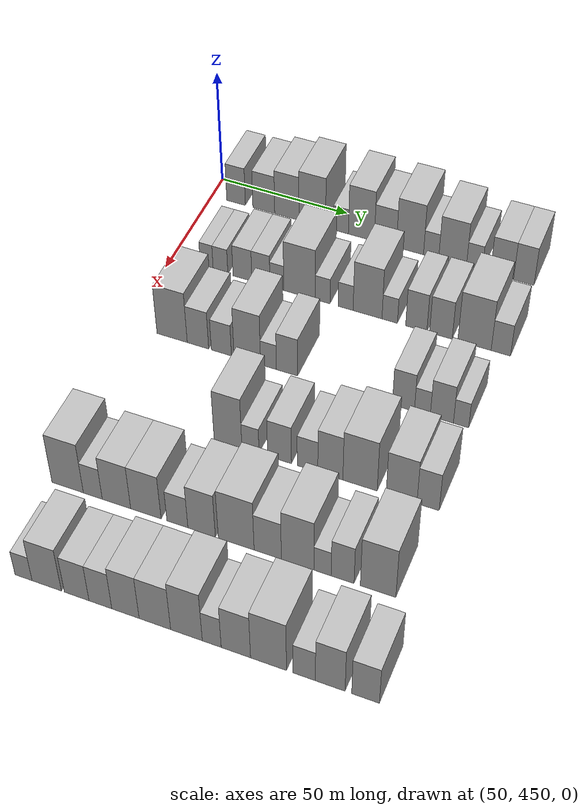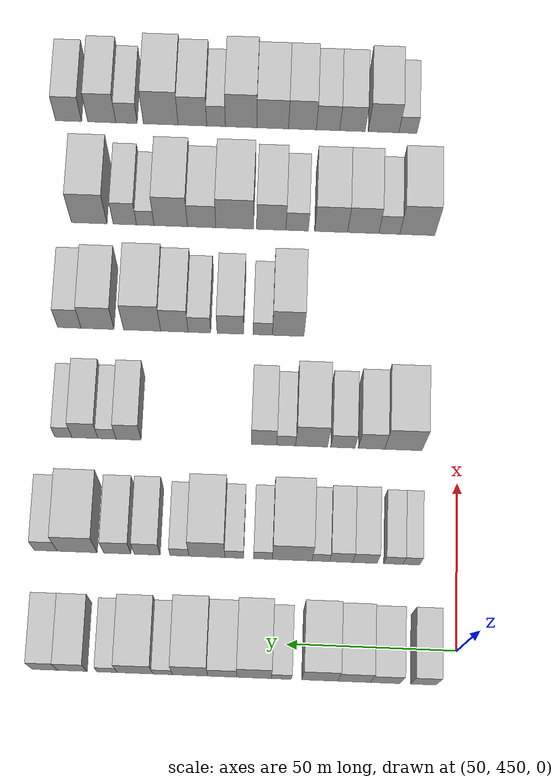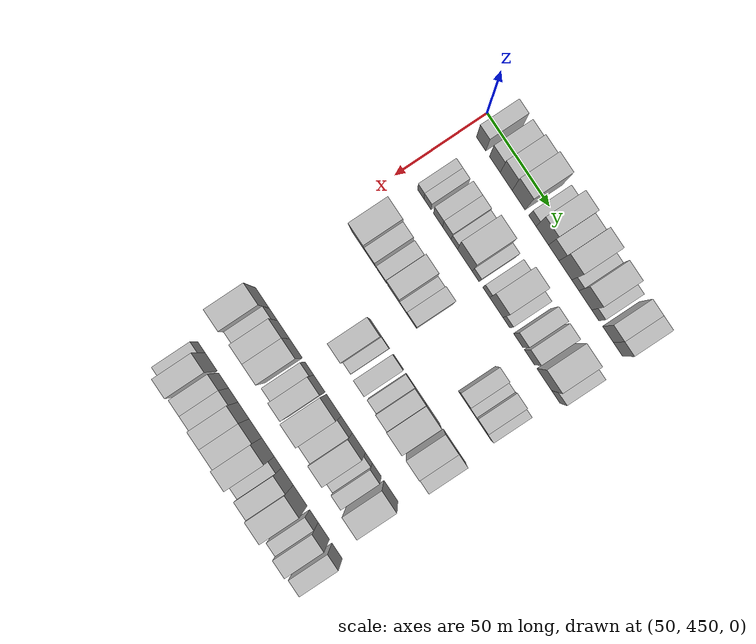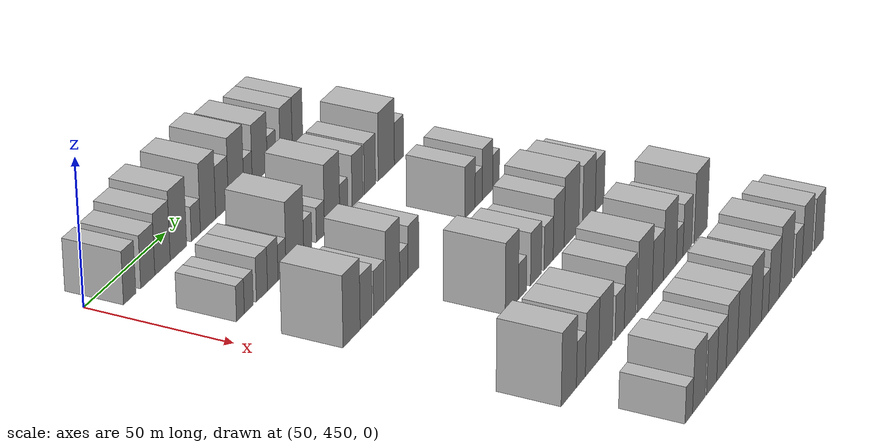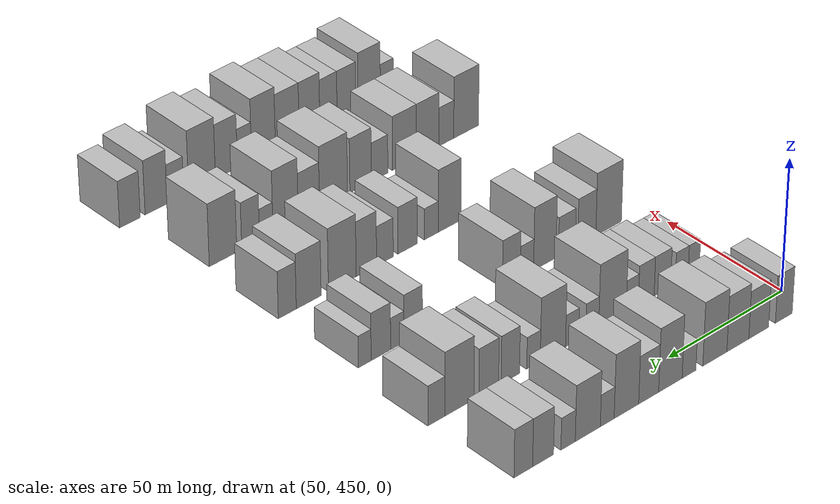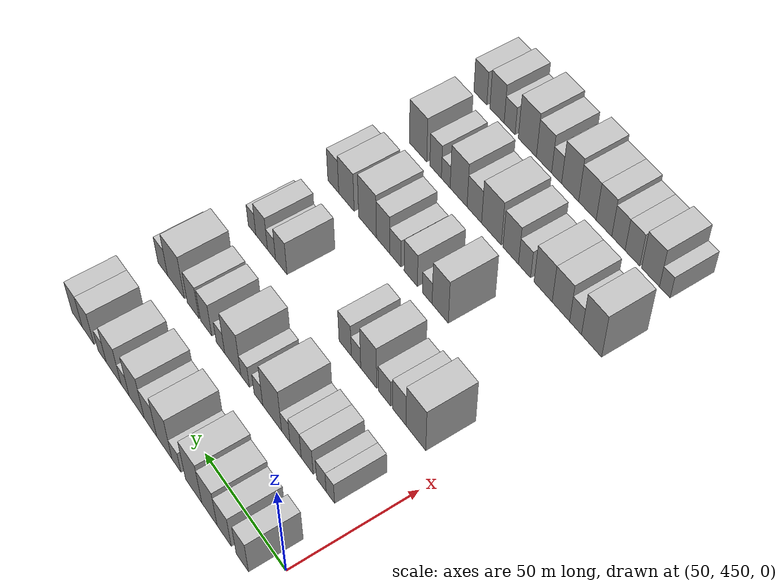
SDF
<sdf version="1.6">
 <world name="default">
  <model name="building_115">
   <static>1</static>
   <pose>50.0000 459.8314 0 0.000000 0.000000 0.000000</pose>
   <link name="link">
    <pose>0 0 9.00 0 0 0</pose>
    <collision name="collision"><geometry><box><size>20.0000 7.4867 18.0000</size></box></geometry></collision>
    <visual name="visual">
     <cast_shadows>0</cast_shadows>
     <geometry><box><size>20.0000 7.4867 18.0000</size></box></geometry>
     <material>
      <script>
       <uri>model://HANNAS_wall/materials/scripts</uri>
       <uri>model://HANNAS_wall/materials/textures</uri>
       <name>vrc/HANNAS_wall</name>
      </script>
     </material>
    </visual>
   </link>
  </model>
  <model name="building_116">
   <static>1</static>
   <pose>50.0000 470.9443 0 0.000000 0.000000 0.000000</pose>
   <link name="link">
    <pose>0 0 9.00 0 0 0</pose>
    <collision name="collision"><geometry><box><size>20.0000 8.7391 18.0000</size></box></geometry></collision>
    <visual name="visual">
     <cast_shadows>0</cast_shadows>
     <geometry><box><size>20.0000 8.7391 18.0000</size></box></geometry>
     <material>
      <script>
       <uri>model://HANNAS_wall/materials/scripts</uri>
       <uri>model://HANNAS_wall/materials/textures</uri>
       <name>vrc/HANNAS_wall</name>
      </script>
     </material>
    </visual>
   </link>
  </model>
  <model name="building_117">
   <static>1</static>
   <pose>50.0000 480.1161 0 0.000000 0.000000 0.000000</pose>
   <link name="link">
    <pose>0 0 10.50 0 0 0</pose>
    <collision name="collision"><geometry><box><size>20.0000 9.6046 21.0000</size></box></geometry></collision>
    <visual name="visual">
     <cast_shadows>0</cast_shadows>
     <geometry><box><size>20.0000 9.6046 21.0000</size></box></geometry>
     <material>
      <script>
       <uri>model://HANNAS_wall/materials/scripts</uri>
       <uri>model://HANNAS_wall/materials/textures</uri>
       <name>vrc/HANNAS_wall</name>
      </script>
     </material>
    </visual>
   </link>
  </model>
  <model name="building_118">
   <static>1</static>
   <pose>50.0000 490.1458 0 0.000000 0.000000 0.000000</pose>
   <link name="link">
    <pose>0 0 12.00 0 0 0</pose>
    <collision name="collision"><geometry><box><size>20.0000 10.4548 24.0000</size></box></geometry></collision>
    <visual name="visual">
     <cast_shadows>0</cast_shadows>
     <geometry><box><size>20.0000 10.4548 24.0000</size></box></geometry>
     <material>
      <script>
       <uri>model://HANNAS_wall/materials/scripts</uri>
       <uri>model://HANNAS_wall/materials/textures</uri>
       <name>vrc/HANNAS_wall</name>
      </script>
     </material>
    </visual>
   </link>
  </model>
  <model name="building_119">
   <static>1</static>
   <pose>50.0000 501.3256 0 0.000000 0.000000 0.000000</pose>
   <link name="link">
    <pose>0 0 6.00 0 0 0</pose>
    <collision name="collision"><geometry><box><size>20.0000 5.9046 12.0000</size></box></geometry></collision>
    <visual name="visual">
     <cast_shadows>0</cast_shadows>
     <geometry><box><size>20.0000 5.9046 12.0000</size></box></geometry>
     <material>
      <script>
       <uri>model://HANNAS_wall/materials/scripts</uri>
       <uri>model://HANNAS_wall/materials/textures</uri>
       <name>vrc/HANNAS_wall</name>
      </script>
     </material>
    </visual>
   </link>
  </model>
  <model name="building_120">
   <static>1</static>
   <pose>50.0000 509.2985 0 0.000000 0.000000 0.000000</pose>
   <link name="link">
    <pose>0 0 12.00 0 0 0</pose>
    <collision name="collision"><geometry><box><size>20.0000 10.0412 24.0000</size></box></geometry></collision>
    <visual name="visual">
     <cast_shadows>0</cast_shadows>
     <geometry><box><size>20.0000 10.0412 24.0000</size></box></geometry>
     <material>
      <script>
       <uri>model://HANNAS_wall/materials/scripts</uri>
       <uri>model://HANNAS_wall/materials/textures</uri>
       <name>vrc/HANNAS_wall</name>
      </script>
     </material>
    </visual>
   </link>
  </model>
  <model name="building_121">
   <static>1</static>
   <pose>50.0000 518.5492 0 0.000000 0.000000 0.000000</pose>
   <link name="link">
    <pose>0 0 9.00 0 0 0</pose>
    <collision name="collision"><geometry><box><size>20.0000 8.4603 18.0000</size></box></geometry></collision>
    <visual name="visual">
     <cast_shadows>0</cast_shadows>
     <geometry><box><size>20.0000 8.4603 18.0000</size></box></geometry>
     <material>
      <script>
       <uri>model://HANNAS_wall/materials/scripts</uri>
       <uri>model://HANNAS_wall/materials/textures</uri>
       <name>vrc/HANNAS_wall</name>
      </script>
     </material>
    </visual>
   </link>
  </model>
  <model name="building_122">
   <static>1</static>
   <pose>50.0000 527.9316 0 0.000000 0.000000 0.000000</pose>
   <link name="link">
    <pose>0 0 12.00 0 0 0</pose>
    <collision name="collision"><geometry><box><size>20.0000 10.3044 24.0000</size></box></geometry></collision>
    <visual name="visual">
     <cast_shadows>0</cast_shadows>
     <geometry><box><size>20.0000 10.3044 24.0000</size></box></geometry>
     <material>
      <script>
       <uri>model://HANNAS_wall/materials/scripts</uri>
       <uri>model://HANNAS_wall/materials/textures</uri>
       <name>vrc/HANNAS_wall</name>
      </script>
     </material>
    </visual>
   </link>
  </model>
  <model name="building_123">
   <static>1</static>
   <pose>50.0000 535.9538 0 0.000000 0.000000 0.000000</pose>
   <link name="link">
    <pose>0 0 6.00 0 0 0</pose>
    <collision name="collision"><geometry><box><size>20.0000 5.7401 12.0000</size></box></geometry></collision>
    <visual name="visual">
     <cast_shadows>0</cast_shadows>
     <geometry><box><size>20.0000 5.7401 12.0000</size></box></geometry>
     <material>
      <script>
       <uri>model://HANNAS_wall/materials/scripts</uri>
       <uri>model://HANNAS_wall/materials/textures</uri>
       <name>vrc/HANNAS_wall</name>
      </script>
     </material>
    </visual>
   </link>
  </model>
  <model name="building_124">
   <static>1</static>
   <pose>50.0000 544.0264 0 0.000000 0.000000 0.000000</pose>
   <link name="link">
    <pose>0 0 10.50 0 0 0</pose>
    <collision name="collision"><geometry><box><size>20.0000 10.4051 21.0000</size></box></geometry></collision>
    <visual name="visual">
     <cast_shadows>0</cast_shadows>
     <geometry><box><size>20.0000 10.4051 21.0000</size></box></geometry>
     <material>
      <script>
       <uri>model://HANNAS_wall/materials/scripts</uri>
       <uri>model://HANNAS_wall/materials/textures</uri>
       <name>vrc/HANNAS_wall</name>
      </script>
     </material>
    </visual>
   </link>
  </model>
  <model name="building_125">
   <static>1</static>
   <pose>50.0000 552.1847 0 0.000000 0.000000 0.000000</pose>
   <link name="link">
    <pose>0 0 6.00 0 0 0</pose>
    <collision name="collision"><geometry><box><size>20.0000 5.9114 12.0000</size></box></geometry></collision>
    <visual name="visual">
     <cast_shadows>0</cast_shadows>
     <geometry><box><size>20.0000 5.9114 12.0000</size></box></geometry>
     <material>
      <script>
       <uri>model://HANNAS_wall/materials/scripts</uri>
       <uri>model://HANNAS_wall/materials/textures</uri>
       <name>vrc/HANNAS_wall</name>
      </script>
     </material>
    </visual>
   </link>
  </model>
  <model name="building_126">
   <static>1</static>
   <pose>50.0000 562.4111 0 0.000000 0.000000 0.000000</pose>
   <link name="link">
    <pose>0 0 9.00 0 0 0</pose>
    <collision name="collision"><geometry><box><size>20.0000 8.5415 18.0000</size></box></geometry></collision>
    <visual name="visual">
     <cast_shadows>0</cast_shadows>
     <geometry><box><size>20.0000 8.5415 18.0000</size></box></geometry>
     <material>
      <script>
       <uri>model://HANNAS_wall/materials/scripts</uri>
       <uri>model://HANNAS_wall/materials/textures</uri>
       <name>vrc/HANNAS_wall</name>
      </script>
     </material>
    </visual>
   </link>
  </model>
  <model name="building_127">
   <static>1</static>
   <pose>50.0000 570.4428 0 0.000000 0.000000 0.000000</pose>
   <link name="link">
    <pose>0 0 9.00 0 0 0</pose>
    <collision name="collision"><geometry><box><size>20.0000 7.5220 18.0000</size></box></geometry></collision>
    <visual name="visual">
     <cast_shadows>0</cast_shadows>
     <geometry><box><size>20.0000 7.5220 18.0000</size></box></geometry>
     <material>
      <script>
       <uri>model://HANNAS_wall/materials/scripts</uri>
       <uri>model://HANNAS_wall/materials/textures</uri>
       <name>vrc/HANNAS_wall</name>
      </script>
     </material>
    </visual>
   </link>
  </model>
  <model name="building_247">
   <static>1</static>
   <pose>85.0000 463.6676 0 0.000000 0.000000 0.000000</pose>
   <link name="link">
    <pose>0 0 6.00 0 0 0</pose>
    <collision name="collision"><geometry><box><size>20.0000 4.9891 12.0000</size></box></geometry></collision>
    <visual name="visual">
     <cast_shadows>0</cast_shadows>
     <geometry><box><size>20.0000 4.9891 12.0000</size></box></geometry>
     <material>
      <script>
       <uri>model://HANNAS_wall/materials/scripts</uri>
       <uri>model://HANNAS_wall/materials/textures</uri>
       <name>vrc/HANNAS_wall</name>
      </script>
     </material>
    </visual>
   </link>
  </model>
  <model name="building_248">
   <static>1</static>
   <pose>85.0000 469.0102 0 0.000000 0.000000 0.000000</pose>
   <link name="link">
    <pose>0 0 6.00 0 0 0</pose>
    <collision name="collision"><geometry><box><size>20.0000 5.6959 12.0000</size></box></geometry></collision>
    <visual name="visual">
     <cast_shadows>0</cast_shadows>
     <geometry><box><size>20.0000 5.6959 12.0000</size></box></geometry>
     <material>
      <script>
       <uri>model://HANNAS_wall/materials/scripts</uri>
       <uri>model://HANNAS_wall/materials/textures</uri>
       <name>vrc/HANNAS_wall</name>
      </script>
     </material>
    </visual>
   </link>
  </model>
  <model name="building_249">
   <static>1</static>
   <pose>85.0000 477.4912 0 0.000000 0.000000 0.000000</pose>
   <link name="link">
    <pose>0 0 7.50 0 0 0</pose>
    <collision name="collision"><geometry><box><size>20.0000 7.2662 15.0000</size></box></geometry></collision>
    <visual name="visual">
     <cast_shadows>0</cast_shadows>
     <geometry><box><size>20.0000 7.2662 15.0000</size></box></geometry>
     <material>
      <script>
       <uri>model://HANNAS_wall/materials/scripts</uri>
       <uri>model://HANNAS_wall/materials/textures</uri>
       <name>vrc/HANNAS_wall</name>
      </script>
     </material>
    </visual>
   </link>
  </model>
  <model name="building_250">
   <static>1</static>
   <pose>85.0000 484.5847 0 0.000000 0.000000 0.000000</pose>
   <link name="link">
    <pose>0 0 7.50 0 0 0</pose>
    <collision name="collision"><geometry><box><size>20.0000 6.9208 15.0000</size></box></geometry></collision>
    <visual name="visual">
     <cast_shadows>0</cast_shadows>
     <geometry><box><size>20.0000 6.9208 15.0000</size></box></geometry>
     <material>
      <script>
       <uri>model://HANNAS_wall/materials/scripts</uri>
       <uri>model://HANNAS_wall/materials/textures</uri>
       <name>vrc/HANNAS_wall</name>
      </script>
     </material>
    </visual>
   </link>
  </model>
  <model name="building_251">
   <static>1</static>
   <pose>85.0000 490.6668 0 0.000000 0.000000 0.000000</pose>
   <link name="link">
    <pose>0 0 6.00 0 0 0</pose>
    <collision name="collision"><geometry><box><size>20.0000 5.2433 12.0000</size></box></geometry></collision>
    <visual name="visual">
     <cast_shadows>0</cast_shadows>
     <geometry><box><size>20.0000 5.2433 12.0000</size></box></geometry>
     <material>
      <script>
       <uri>model://HANNAS_wall/materials/scripts</uri>
       <uri>model://HANNAS_wall/materials/textures</uri>
       <name>vrc/HANNAS_wall</name>
      </script>
     </material>
    </visual>
   </link>
  </model>
  <model name="building_252">
   <static>1</static>
   <pose>85.0000 499.2206 0 0.000000 0.000000 0.000000</pose>
   <link name="link">
    <pose>0 0 12.00 0 0 0</pose>
    <collision name="collision"><geometry><box><size>20.0000 11.8644 24.0000</size></box></geometry></collision>
    <visual name="visual">
     <cast_shadows>0</cast_shadows>
     <geometry><box><size>20.0000 11.8644 24.0000</size></box></geometry>
     <material>
      <script>
       <uri>model://HANNAS_wall/materials/scripts</uri>
       <uri>model://HANNAS_wall/materials/textures</uri>
       <name>vrc/HANNAS_wall</name>
      </script>
     </material>
    </visual>
   </link>
  </model>
  <model name="building_253">
   <static>1</static>
   <pose>85.0000 507.9307 0 0.000000 0.000000 0.000000</pose>
   <link name="link">
    <pose>0 0 6.00 0 0 0</pose>
    <collision name="collision"><geometry><box><size>20.0000 5.5558 12.0000</size></box></geometry></collision>
    <visual name="visual">
     <cast_shadows>0</cast_shadows>
     <geometry><box><size>20.0000 5.5558 12.0000</size></box></geometry>
     <material>
      <script>
       <uri>model://HANNAS_wall/materials/scripts</uri>
       <uri>model://HANNAS_wall/materials/textures</uri>
       <name>vrc/HANNAS_wall</name>
      </script>
     </material>
    </visual>
   </link>
  </model>
  <model name="building_254">
   <static>1</static>
   <pose>85.0000 516.5037 0 0.000000 0.000000 0.000000</pose>
   <link name="link">
    <pose>0 0 6.00 0 0 0</pose>
    <collision name="collision"><geometry><box><size>20.0000 5.5902 12.0000</size></box></geometry></collision>
    <visual name="visual">
     <cast_shadows>0</cast_shadows>
     <geometry><box><size>20.0000 5.5902 12.0000</size></box></geometry>
     <material>
      <script>
       <uri>model://HANNAS_wall/materials/scripts</uri>
       <uri>model://HANNAS_wall/materials/textures</uri>
       <name>vrc/HANNAS_wall</name>
      </script>
     </material>
    </visual>
   </link>
  </model>
  <model name="building_255">
   <static>1</static>
   <pose>85.0000 524.6345 0 0.000000 0.000000 0.000000</pose>
   <link name="link">
    <pose>0 0 12.00 0 0 0</pose>
    <collision name="collision"><geometry><box><size>20.0000 10.6714 24.0000</size></box></geometry></collision>
    <visual name="visual">
     <cast_shadows>0</cast_shadows>
     <geometry><box><size>20.0000 10.6714 24.0000</size></box></geometry>
     <material>
      <script>
       <uri>model://HANNAS_wall/materials/scripts</uri>
       <uri>model://HANNAS_wall/materials/textures</uri>
       <name>vrc/HANNAS_wall</name>
      </script>
     </material>
    </visual>
   </link>
  </model>
  <model name="building_256">
   <static>1</static>
   <pose>85.0000 532.8067 0 0.000000 0.000000 0.000000</pose>
   <link name="link">
    <pose>0 0 6.00 0 0 0</pose>
    <collision name="collision"><geometry><box><size>20.0000 5.6731 12.0000</size></box></geometry></collision>
    <visual name="visual">
     <cast_shadows>0</cast_shadows>
     <geometry><box><size>20.0000 5.6731 12.0000</size></box></geometry>
     <material>
      <script>
       <uri>model://HANNAS_wall/materials/scripts</uri>
       <uri>model://HANNAS_wall/materials/textures</uri>
       <name>vrc/HANNAS_wall</name>
      </script>
     </material>
    </visual>
   </link>
  </model>
  <model name="building_257">
   <static>1</static>
   <pose>85.0000 542.4916 0 0.000000 0.000000 0.000000</pose>
   <link name="link">
    <pose>0 0 9.00 0 0 0</pose>
    <collision name="collision"><geometry><box><size>20.0000 7.6966 18.0000</size></box></geometry></collision>
    <visual name="visual">
     <cast_shadows>0</cast_shadows>
     <geometry><box><size>20.0000 7.6966 18.0000</size></box></geometry>
     <material>
      <script>
       <uri>model://HANNAS_wall/materials/scripts</uri>
       <uri>model://HANNAS_wall/materials/textures</uri>
       <name>vrc/HANNAS_wall</name>
      </script>
     </material>
    </visual>
   </link>
  </model>
  <model name="building_258">
   <static>1</static>
   <pose>85.0000 551.4148 0 0.000000 0.000000 0.000000</pose>
   <link name="link">
    <pose>0 0 9.00 0 0 0</pose>
    <collision name="collision"><geometry><box><size>20.0000 8.1497 18.0000</size></box></geometry></collision>
    <visual name="visual">
     <cast_shadows>0</cast_shadows>
     <geometry><box><size>20.0000 8.1497 18.0000</size></box></geometry>
     <material>
      <script>
       <uri>model://HANNAS_wall/materials/scripts</uri>
       <uri>model://HANNAS_wall/materials/textures</uri>
       <name>vrc/HANNAS_wall</name>
      </script>
     </material>
    </visual>
   </link>
  </model>
  <model name="building_259">
   <static>1</static>
   <pose>85.0000 563.4375 0 0.000000 0.000000 0.000000</pose>
   <link name="link">
    <pose>0 0 12.00 0 0 0</pose>
    <collision name="collision"><geometry><box><size>20.0000 11.8957 24.0000</size></box></geometry></collision>
    <visual name="visual">
     <cast_shadows>0</cast_shadows>
     <geometry><box><size>20.0000 11.8957 24.0000</size></box></geometry>
     <material>
      <script>
       <uri>model://HANNAS_wall/materials/scripts</uri>
       <uri>model://HANNAS_wall/materials/textures</uri>
       <name>vrc/HANNAS_wall</name>
      </script>
     </material>
    </visual>
   </link>
  </model>
  <model name="building_260">
   <static>1</static>
   <pose>85.0000 572.8201 0 0.000000 0.000000 0.000000</pose>
   <link name="link">
    <pose>0 0 7.50 0 0 0</pose>
    <collision name="collision"><geometry><box><size>20.0000 6.8696 15.0000</size></box></geometry></collision>
    <visual name="visual">
     <cast_shadows>0</cast_shadows>
     <geometry><box><size>20.0000 6.8696 15.0000</size></box></geometry>
     <material>
      <script>
       <uri>model://HANNAS_wall/materials/scripts</uri>
       <uri>model://HANNAS_wall/materials/textures</uri>
       <name>vrc/HANNAS_wall</name>
      </script>
     </material>
    </visual>
   </link>
  </model>
  <model name="building_377">
   <static>1</static>
   <pose>120.0000 466.3918 0 0.000000 0.000000 0.000000</pose>
   <link name="link">
    <pose>0 0 12.00 0 0 0</pose>
    <collision name="collision"><geometry><box><size>20.0000 11.3774 24.0000</size></box></geometry></collision>
    <visual name="visual">
     <cast_shadows>0</cast_shadows>
     <geometry><box><size>20.0000 11.3774 24.0000</size></box></geometry>
     <material>
      <script>
       <uri>model://HANNAS_wall/materials/scripts</uri>
       <uri>model://HANNAS_wall/materials/textures</uri>
       <name>vrc/HANNAS_wall</name>
      </script>
     </material>
    </visual>
   </link>
  </model>
  <model name="building_378">
   <static>1</static>
   <pose>120.0000 476.0797 0 0.000000 0.000000 0.000000</pose>
   <link name="link">
    <pose>0 0 9.00 0 0 0</pose>
    <collision name="collision"><geometry><box><size>20.0000 7.9983 18.0000</size></box></geometry></collision>
    <visual name="visual">
     <cast_shadows>0</cast_shadows>
     <geometry><box><size>20.0000 7.9983 18.0000</size></box></geometry>
     <material>
      <script>
       <uri>model://HANNAS_wall/materials/scripts</uri>
       <uri>model://HANNAS_wall/materials/textures</uri>
       <name>vrc/HANNAS_wall</name>
      </script>
     </material>
    </visual>
   </link>
  </model>
  <model name="building_379">
   <static>1</static>
   <pose>120.0000 484.7877 0 0.000000 0.000000 0.000000</pose>
   <link name="link">
    <pose>0 0 7.50 0 0 0</pose>
    <collision name="collision"><geometry><box><size>20.0000 7.4178 15.0000</size></box></geometry></collision>
    <visual name="visual">
     <cast_shadows>0</cast_shadows>
     <geometry><box><size>20.0000 7.4178 15.0000</size></box></geometry>
     <material>
      <script>
       <uri>model://HANNAS_wall/materials/scripts</uri>
       <uri>model://HANNAS_wall/materials/textures</uri>
       <name>vrc/HANNAS_wall</name>
      </script>
     </material>
    </visual>
   </link>
  </model>
  <model name="building_380">
   <static>1</static>
   <pose>120.0000 494.3664 0 0.000000 0.000000 0.000000</pose>
   <link name="link">
    <pose>0 0 12.00 0 0 0</pose>
    <collision name="collision"><geometry><box><size>20.0000 9.7394 24.0000</size></box></geometry></collision>
    <visual name="visual">
     <cast_shadows>0</cast_shadows>
     <geometry><box><size>20.0000 9.7394 24.0000</size></box></geometry>
     <material>
      <script>
       <uri>model://HANNAS_wall/materials/scripts</uri>
       <uri>model://HANNAS_wall/materials/textures</uri>
       <name>vrc/HANNAS_wall</name>
      </script>
     </material>
    </visual>
   </link>
  </model>
  <model name="building_381">
   <static>1</static>
   <pose>120.0000 502.1116 0 0.000000 0.000000 0.000000</pose>
   <link name="link">
    <pose>0 0 6.00 0 0 0</pose>
    <collision name="collision"><geometry><box><size>20.0000 5.7511 12.0000</size></box></geometry></collision>
    <visual name="visual">
     <cast_shadows>0</cast_shadows>
     <geometry><box><size>20.0000 5.7511 12.0000</size></box></geometry>
     <material>
      <script>
       <uri>model://HANNAS_wall/materials/scripts</uri>
       <uri>model://HANNAS_wall/materials/textures</uri>
       <name>vrc/HANNAS_wall</name>
      </script>
     </material>
    </visual>
   </link>
  </model>
  <model name="building_382">
   <static>1</static>
   <pose>120.0000 508.8308 0 0.000000 0.000000 0.000000</pose>
   <link name="link">
    <pose>0 0 9.00 0 0 0</pose>
    <collision name="collision"><geometry><box><size>20.0000 7.6872 18.0000</size></box></geometry></collision>
    <visual name="visual">
     <cast_shadows>0</cast_shadows>
     <geometry><box><size>20.0000 7.6872 18.0000</size></box></geometry>
     <material>
      <script>
       <uri>model://HANNAS_wall/materials/scripts</uri>
       <uri>model://HANNAS_wall/materials/textures</uri>
       <name>vrc/HANNAS_wall</name>
      </script>
     </material>
    </visual>
   </link>
  </model>
  <model name="building_383">
   <static>1</static>
   <pose>120.0000 550.1734 0 0.000000 0.000000 0.000000</pose>
   <link name="link">
    <pose>0 0 9.00 0 0 0</pose>
    <collision name="collision"><geometry><box><size>20.0000 7.6660 18.0000</size></box></geometry></collision>
    <visual name="visual">
     <cast_shadows>0</cast_shadows>
     <geometry><box><size>20.0000 7.6660 18.0000</size></box></geometry>
     <material>
      <script>
       <uri>model://HANNAS_wall/materials/scripts</uri>
       <uri>model://HANNAS_wall/materials/textures</uri>
       <name>vrc/HANNAS_wall</name>
      </script>
     </material>
    </visual>
   </link>
  </model>
  <model name="building_384">
   <static>1</static>
   <pose>120.0000 556.7506 0 0.000000 0.000000 0.000000</pose>
   <link name="link">
    <pose>0 0 6.00 0 0 0</pose>
    <collision name="collision"><geometry><box><size>20.0000 5.4882 12.0000</size></box></geometry></collision>
    <visual name="visual">
     <cast_shadows>0</cast_shadows>
     <geometry><box><size>20.0000 5.4882 12.0000</size></box></geometry>
     <material>
      <script>
       <uri>model://HANNAS_wall/materials/scripts</uri>
       <uri>model://HANNAS_wall/materials/textures</uri>
       <name>vrc/HANNAS_wall</name>
      </script>
     </material>
    </visual>
   </link>
  </model>
  <model name="building_385">
   <static>1</static>
   <pose>120.0000 563.4795 0 0.000000 0.000000 0.000000</pose>
   <link name="link">
    <pose>0 0 9.00 0 0 0</pose>
    <collision name="collision"><geometry><box><size>20.0000 7.9696 18.0000</size></box></geometry></collision>
    <visual name="visual">
     <cast_shadows>0</cast_shadows>
     <geometry><box><size>20.0000 7.9696 18.0000</size></box></geometry>
     <material>
      <script>
       <uri>model://HANNAS_wall/materials/scripts</uri>
       <uri>model://HANNAS_wall/materials/textures</uri>
       <name>vrc/HANNAS_wall</name>
      </script>
     </material>
    </visual>
   </link>
  </model>
  <model name="building_386">
   <static>1</static>
   <pose>120.0000 570.0790 0 0.000000 0.000000 0.000000</pose>
   <link name="link">
    <pose>0 0 6.00 0 0 0</pose>
    <collision name="collision"><geometry><box><size>20.0000 5.2295 12.0000</size></box></geometry></collision>
    <visual name="visual">
     <cast_shadows>0</cast_shadows>
     <geometry><box><size>20.0000 5.2295 12.0000</size></box></geometry>
     <material>
      <script>
       <uri>model://HANNAS_wall/materials/scripts</uri>
       <uri>model://HANNAS_wall/materials/textures</uri>
       <name>vrc/HANNAS_wall</name>
      </script>
     </material>
    </visual>
   </link>
  </model>
  <model name="building_507">
   <static>1</static>
   <pose>155.0000 502.5700 0 0.000000 0.000000 0.000000</pose>
   <link name="link">
    <pose>0 0 12.00 0 0 0</pose>
    <collision name="collision"><geometry><box><size>20.0000 9.7744 24.0000</size></box></geometry></collision>
    <visual name="visual">
     <cast_shadows>0</cast_shadows>
     <geometry><box><size>20.0000 9.7744 24.0000</size></box></geometry>
     <material>
      <script>
       <uri>model://HANNAS_wall/materials/scripts</uri>
       <uri>model://HANNAS_wall/materials/textures</uri>
       <name>vrc/HANNAS_wall</name>
      </script>
     </material>
    </visual>
   </link>
  </model>
  <model name="building_508">
   <static>1</static>
   <pose>155.0000 510.4482 0 0.000000 0.000000 0.000000</pose>
   <link name="link">
    <pose>0 0 6.00 0 0 0</pose>
    <collision name="collision"><geometry><box><size>20.0000 5.9819 12.0000</size></box></geometry></collision>
    <visual name="visual">
     <cast_shadows>0</cast_shadows>
     <geometry><box><size>20.0000 5.9819 12.0000</size></box></geometry>
     <material>
      <script>
       <uri>model://HANNAS_wall/materials/scripts</uri>
       <uri>model://HANNAS_wall/materials/textures</uri>
       <name>vrc/HANNAS_wall</name>
      </script>
     </material>
    </visual>
   </link>
  </model>
  <model name="building_509">
   <static>1</static>
   <pose>155.0000 520.5545 0 0.000000 0.000000 0.000000</pose>
   <link name="link">
    <pose>0 0 9.00 0 0 0</pose>
    <collision name="collision"><geometry><box><size>20.0000 8.2308 18.0000</size></box></geometry></collision>
    <visual name="visual">
     <cast_shadows>0</cast_shadows>
     <geometry><box><size>20.0000 8.2308 18.0000</size></box></geometry>
     <material>
      <script>
       <uri>model://HANNAS_wall/materials/scripts</uri>
       <uri>model://HANNAS_wall/materials/textures</uri>
       <name>vrc/HANNAS_wall</name>
      </script>
     </material>
    </visual>
   </link>
  </model>
  <model name="building_510">
   <static>1</static>
   <pose>155.0000 530.1894 0 0.000000 0.000000 0.000000</pose>
   <link name="link">
    <pose>0 0 7.50 0 0 0</pose>
    <collision name="collision"><geometry><box><size>20.0000 7.0390 15.0000</size></box></geometry></collision>
    <visual name="visual">
     <cast_shadows>0</cast_shadows>
     <geometry><box><size>20.0000 7.0390 15.0000</size></box></geometry>
     <material>
      <script>
       <uri>model://HANNAS_wall/materials/scripts</uri>
       <uri>model://HANNAS_wall/materials/textures</uri>
       <name>vrc/HANNAS_wall</name>
      </script>
     </material>
    </visual>
   </link>
  </model>
  <model name="building_511">
   <static>1</static>
   <pose>155.0000 537.9779 0 0.000000 0.000000 0.000000</pose>
   <link name="link">
    <pose>0 0 10.50 0 0 0</pose>
    <collision name="collision"><geometry><box><size>20.0000 8.5381 21.0000</size></box></geometry></collision>
    <visual name="visual">
     <cast_shadows>0</cast_shadows>
     <geometry><box><size>20.0000 8.5381 21.0000</size></box></geometry>
     <material>
      <script>
       <uri>model://HANNAS_wall/materials/scripts</uri>
       <uri>model://HANNAS_wall/materials/textures</uri>
       <name>vrc/HANNAS_wall</name>
      </script>
     </material>
    </visual>
   </link>
  </model>
  <model name="building_512">
   <static>1</static>
   <pose>155.0000 548.0271 0 0.000000 0.000000 0.000000</pose>
   <link name="link">
    <pose>0 0 12.00 0 0 0</pose>
    <collision name="collision"><geometry><box><size>20.0000 11.5603 24.0000</size></box></geometry></collision>
    <visual name="visual">
     <cast_shadows>0</cast_shadows>
     <geometry><box><size>20.0000 11.5603 24.0000</size></box></geometry>
     <material>
      <script>
       <uri>model://HANNAS_wall/materials/scripts</uri>
       <uri>model://HANNAS_wall/materials/textures</uri>
       <name>vrc/HANNAS_wall</name>
      </script>
     </material>
    </visual>
   </link>
  </model>
  <model name="building_513">
   <static>1</static>
   <pose>155.0000 561.9176 0 0.000000 0.000000 0.000000</pose>
   <link name="link">
    <pose>0 0 10.50 0 0 0</pose>
    <collision name="collision"><geometry><box><size>20.0000 10.2207 21.0000</size></box></geometry></collision>
    <visual name="visual">
     <cast_shadows>0</cast_shadows>
     <geometry><box><size>20.0000 10.2207 21.0000</size></box></geometry>
     <material>
      <script>
       <uri>model://HANNAS_wall/materials/scripts</uri>
       <uri>model://HANNAS_wall/materials/textures</uri>
       <name>vrc/HANNAS_wall</name>
      </script>
     </material>
    </visual>
   </link>
  </model>
  <model name="building_514">
   <static>1</static>
   <pose>155.0000 570.6962 0 0.000000 0.000000 0.000000</pose>
   <link name="link">
    <pose>0 0 9.00 0 0 0</pose>
    <collision name="collision"><geometry><box><size>20.0000 7.3364 18.0000</size></box></geometry></collision>
    <visual name="visual">
     <cast_shadows>0</cast_shadows>
     <geometry><box><size>20.0000 7.3364 18.0000</size></box></geometry>
     <material>
      <script>
       <uri>model://HANNAS_wall/materials/scripts</uri>
       <uri>model://HANNAS_wall/materials/textures</uri>
       <name>vrc/HANNAS_wall</name>
      </script>
     </material>
    </visual>
   </link>
  </model>
  <model name="building_631">
   <static>1</static>
   <pose>190.0000 462.7399 0 0.000000 0.000000 0.000000</pose>
   <link name="link">
    <pose>0 0 12.00 0 0 0</pose>
    <collision name="collision"><geometry><box><size>20.0000 11.0902 24.0000</size></box></geometry></collision>
    <visual name="visual">
     <cast_shadows>0</cast_shadows>
     <geometry><box><size>20.0000 11.0902 24.0000</size></box></geometry>
     <material>
      <script>
       <uri>model://HANNAS_wall/materials/scripts</uri>
       <uri>model://HANNAS_wall/materials/textures</uri>
       <name>vrc/HANNAS_wall</name>
      </script>
     </material>
    </visual>
   </link>
  </model>
  <model name="building_632">
   <static>1</static>
   <pose>190.0000 471.5985 0 0.000000 0.000000 0.000000</pose>
   <link name="link">
    <pose>0 0 7.50 0 0 0</pose>
    <collision name="collision"><geometry><box><size>20.0000 6.6270 15.0000</size></box></geometry></collision>
    <visual name="visual">
     <cast_shadows>0</cast_shadows>
     <geometry><box><size>20.0000 6.6270 15.0000</size></box></geometry>
     <material>
      <script>
       <uri>model://HANNAS_wall/materials/scripts</uri>
       <uri>model://HANNAS_wall/materials/textures</uri>
       <name>vrc/HANNAS_wall</name>
      </script>
     </material>
    </visual>
   </link>
  </model>
  <model name="building_633">
   <static>1</static>
   <pose>190.0000 479.8551 0 0.000000 0.000000 0.000000</pose>
   <link name="link">
    <pose>0 0 10.50 0 0 0</pose>
    <collision name="collision"><geometry><box><size>20.0000 9.8862 21.0000</size></box></geometry></collision>
    <visual name="visual">
     <cast_shadows>0</cast_shadows>
     <geometry><box><size>20.0000 9.8862 21.0000</size></box></geometry>
     <material>
      <script>
       <uri>model://HANNAS_wall/materials/scripts</uri>
       <uri>model://HANNAS_wall/materials/textures</uri>
       <name>vrc/HANNAS_wall</name>
      </script>
     </material>
    </visual>
   </link>
  </model>
  <model name="building_634">
   <static>1</static>
   <pose>190.0000 490.0333 0 0.000000 0.000000 0.000000</pose>
   <link name="link">
    <pose>0 0 10.50 0 0 0</pose>
    <collision name="collision"><geometry><box><size>20.0000 10.4704 21.0000</size></box></geometry></collision>
    <visual name="visual">
     <cast_shadows>0</cast_shadows>
     <geometry><box><size>20.0000 10.4704 21.0000</size></box></geometry>
     <material>
      <script>
       <uri>model://HANNAS_wall/materials/scripts</uri>
       <uri>model://HANNAS_wall/materials/textures</uri>
       <name>vrc/HANNAS_wall</name>
      </script>
     </material>
    </visual>
   </link>
  </model>
  <model name="building_635">
   <static>1</static>
   <pose>190.0000 500.8376 0 0.000000 0.000000 0.000000</pose>
   <link name="link">
    <pose>0 0 7.50 0 0 0</pose>
    <collision name="collision"><geometry><box><size>20.0000 7.1381 15.0000</size></box></geometry></collision>
    <visual name="visual">
     <cast_shadows>0</cast_shadows>
     <geometry><box><size>20.0000 7.1381 15.0000</size></box></geometry>
     <material>
      <script>
       <uri>model://HANNAS_wall/materials/scripts</uri>
       <uri>model://HANNAS_wall/materials/textures</uri>
       <name>vrc/HANNAS_wall</name>
      </script>
     </material>
    </visual>
   </link>
  </model>
  <model name="building_636">
   <static>1</static>
   <pose>190.0000 509.0409 0 0.000000 0.000000 0.000000</pose>
   <link name="link">
    <pose>0 0 10.50 0 0 0</pose>
    <collision name="collision"><geometry><box><size>20.0000 9.2686 21.0000</size></box></geometry></collision>
    <visual name="visual">
     <cast_shadows>0</cast_shadows>
     <geometry><box><size>20.0000 9.2686 21.0000</size></box></geometry>
     <material>
      <script>
       <uri>model://HANNAS_wall/materials/scripts</uri>
       <uri>model://HANNAS_wall/materials/textures</uri>
       <name>vrc/HANNAS_wall</name>
      </script>
     </material>
    </visual>
   </link>
  </model>
  <model name="building_637">
   <static>1</static>
   <pose>190.0000 520.6463 0 0.000000 0.000000 0.000000</pose>
   <link name="link">
    <pose>0 0 12.00 0 0 0</pose>
    <collision name="collision"><geometry><box><size>20.0000 11.9422 24.0000</size></box></geometry></collision>
    <visual name="visual">
     <cast_shadows>0</cast_shadows>
     <geometry><box><size>20.0000 11.9422 24.0000</size></box></geometry>
     <material>
      <script>
       <uri>model://HANNAS_wall/materials/scripts</uri>
       <uri>model://HANNAS_wall/materials/textures</uri>
       <name>vrc/HANNAS_wall</name>
      </script>
     </material>
    </visual>
   </link>
  </model>
  <model name="building_638">
   <static>1</static>
   <pose>190.0000 531.1165 0 0.000000 0.000000 0.000000</pose>
   <link name="link">
    <pose>0 0 9.00 0 0 0</pose>
    <collision name="collision"><geometry><box><size>20.0000 8.9983 18.0000</size></box></geometry></collision>
    <visual name="visual">
     <cast_shadows>0</cast_shadows>
     <geometry><box><size>20.0000 8.9983 18.0000</size></box></geometry>
     <material>
      <script>
       <uri>model://HANNAS_wall/materials/scripts</uri>
       <uri>model://HANNAS_wall/materials/textures</uri>
       <name>vrc/HANNAS_wall</name>
      </script>
     </material>
    </visual>
   </link>
  </model>
  <model name="building_639">
   <static>1</static>
   <pose>190.0000 540.9226 0 0.000000 0.000000 0.000000</pose>
   <link name="link">
    <pose>0 0 12.00 0 0 0</pose>
    <collision name="collision"><geometry><box><size>20.0000 10.6139 24.0000</size></box></geometry></collision>
    <visual name="visual">
     <cast_shadows>0</cast_shadows>
     <geometry><box><size>20.0000 10.6139 24.0000</size></box></geometry>
     <material>
      <script>
       <uri>model://HANNAS_wall/materials/scripts</uri>
       <uri>model://HANNAS_wall/materials/textures</uri>
       <name>vrc/HANNAS_wall</name>
      </script>
     </material>
    </visual>
   </link>
  </model>
  <model name="building_640">
   <static>1</static>
   <pose>190.0000 549.0304 0 0.000000 0.000000 0.000000</pose>
   <link name="link">
    <pose>0 0 6.00 0 0 0</pose>
    <collision name="collision"><geometry><box><size>20.0000 5.6017 12.0000</size></box></geometry></collision>
    <visual name="visual">
     <cast_shadows>0</cast_shadows>
     <geometry><box><size>20.0000 5.6017 12.0000</size></box></geometry>
     <material>
      <script>
       <uri>model://HANNAS_wall/materials/scripts</uri>
       <uri>model://HANNAS_wall/materials/textures</uri>
       <name>vrc/HANNAS_wall</name>
      </script>
     </material>
    </visual>
   </link>
  </model>
  <model name="building_641">
   <static>1</static>
   <pose>190.0000 555.5238 0 0.000000 0.000000 0.000000</pose>
   <link name="link">
    <pose>0 0 9.00 0 0 0</pose>
    <collision name="collision"><geometry><box><size>20.0000 7.3851 18.0000</size></box></geometry></collision>
    <visual name="visual">
     <cast_shadows>0</cast_shadows>
     <geometry><box><size>20.0000 7.3851 18.0000</size></box></geometry>
     <material>
      <script>
       <uri>model://HANNAS_wall/materials/scripts</uri>
       <uri>model://HANNAS_wall/materials/textures</uri>
       <name>vrc/HANNAS_wall</name>
      </script>
     </material>
    </visual>
   </link>
  </model>
  <model name="building_642">
   <static>1</static>
   <pose>190.0000 566.8747 0 0.000000 0.000000 0.000000</pose>
   <link name="link">
    <pose>0 0 12.00 0 0 0</pose>
    <collision name="collision"><geometry><box><size>20.0000 11.3168 24.0000</size></box></geometry></collision>
    <visual name="visual">
     <cast_shadows>0</cast_shadows>
     <geometry><box><size>20.0000 11.3168 24.0000</size></box></geometry>
     <material>
      <script>
       <uri>model://HANNAS_wall/materials/scripts</uri>
       <uri>model://HANNAS_wall/materials/textures</uri>
       <name>vrc/HANNAS_wall</name>
      </script>
     </material>
    </visual>
   </link>
  </model>
  <model name="building_757">
   <static>1</static>
   <pose>225.0000 466.0577 0 0.000000 0.000000 0.000000</pose>
   <link name="link">
    <pose>0 0 6.00 0 0 0</pose>
    <collision name="collision"><geometry><box><size>20.0000 5.7985 12.0000</size></box></geometry></collision>
    <visual name="visual">
     <cast_shadows>0</cast_shadows>
     <geometry><box><size>20.0000 5.7985 12.0000</size></box></geometry>
     <material>
      <script>
       <uri>model://HANNAS_wall/materials/scripts</uri>
       <uri>model://HANNAS_wall/materials/textures</uri>
       <name>vrc/HANNAS_wall</name>
      </script>
     </material>
    </visual>
   </link>
  </model>
  <model name="building_758">
   <static>1</static>
   <pose>225.0000 473.9018 0 0.000000 0.000000 0.000000</pose>
   <link name="link">
    <pose>0 0 10.50 0 0 0</pose>
    <collision name="collision"><geometry><box><size>20.0000 9.8897 21.0000</size></box></geometry></collision>
    <visual name="visual">
     <cast_shadows>0</cast_shadows>
     <geometry><box><size>20.0000 9.8897 21.0000</size></box></geometry>
     <material>
      <script>
       <uri>model://HANNAS_wall/materials/scripts</uri>
       <uri>model://HANNAS_wall/materials/textures</uri>
       <name>vrc/HANNAS_wall</name>
      </script>
     </material>
    </visual>
   </link>
  </model>
  <model name="building_759">
   <static>1</static>
   <pose>225.0000 483.9639 0 0.000000 0.000000 0.000000</pose>
   <link name="link">
    <pose>0 0 9.00 0 0 0</pose>
    <collision name="collision"><geometry><box><size>20.0000 8.2343 18.0000</size></box></geometry></collision>
    <visual name="visual">
     <cast_shadows>0</cast_shadows>
     <geometry><box><size>20.0000 8.2343 18.0000</size></box></geometry>
     <material>
      <script>
       <uri>model://HANNAS_wall/materials/scripts</uri>
       <uri>model://HANNAS_wall/materials/textures</uri>
       <name>vrc/HANNAS_wall</name>
      </script>
     </material>
    </visual>
   </link>
  </model>
  <model name="building_760">
   <static>1</static>
   <pose>225.0000 491.8650 0 0.000000 0.000000 0.000000</pose>
   <link name="link">
    <pose>0 0 9.00 0 0 0</pose>
    <collision name="collision"><geometry><box><size>20.0000 7.5680 18.0000</size></box></geometry></collision>
    <visual name="visual">
     <cast_shadows>0</cast_shadows>
     <geometry><box><size>20.0000 7.5680 18.0000</size></box></geometry>
     <material>
      <script>
       <uri>model://HANNAS_wall/materials/scripts</uri>
       <uri>model://HANNAS_wall/materials/textures</uri>
       <name>vrc/HANNAS_wall</name>
      </script>
     </material>
    </visual>
   </link>
  </model>
  <model name="building_761">
   <static>1</static>
   <pose>225.0000 500.1436 0 0.000000 0.000000 0.000000</pose>
   <link name="link">
    <pose>0 0 10.50 0 0 0</pose>
    <collision name="collision"><geometry><box><size>20.0000 8.9891 21.0000</size></box></geometry></collision>
    <visual name="visual">
     <cast_shadows>0</cast_shadows>
     <geometry><box><size>20.0000 8.9891 21.0000</size></box></geometry>
     <material>
      <script>
       <uri>model://HANNAS_wall/materials/scripts</uri>
       <uri>model://HANNAS_wall/materials/textures</uri>
       <name>vrc/HANNAS_wall</name>
      </script>
     </material>
    </visual>
   </link>
  </model>
  <model name="building_762">
   <static>1</static>
   <pose>225.0000 509.7598 0 0.000000 0.000000 0.000000</pose>
   <link name="link">
    <pose>0 0 10.50 0 0 0</pose>
    <collision name="collision"><geometry><box><size>20.0000 10.2433 21.0000</size></box></geometry></collision>
    <visual name="visual">
     <cast_shadows>0</cast_shadows>
     <geometry><box><size>20.0000 10.2433 21.0000</size></box></geometry>
     <material>
      <script>
       <uri>model://HANNAS_wall/materials/scripts</uri>
       <uri>model://HANNAS_wall/materials/textures</uri>
       <name>vrc/HANNAS_wall</name>
      </script>
     </material>
    </visual>
   </link>
  </model>
  <model name="building_763">
   <static>1</static>
   <pose>225.0000 519.9789 0 0.000000 0.000000 0.000000</pose>
   <link name="link">
    <pose>0 0 12.00 0 0 0</pose>
    <collision name="collision"><geometry><box><size>20.0000 10.1949 24.0000</size></box></geometry></collision>
    <visual name="visual">
     <cast_shadows>0</cast_shadows>
     <geometry><box><size>20.0000 10.1949 24.0000</size></box></geometry>
     <material>
      <script>
       <uri>model://HANNAS_wall/materials/scripts</uri>
       <uri>model://HANNAS_wall/materials/textures</uri>
       <name>vrc/HANNAS_wall</name>
      </script>
     </material>
    </visual>
   </link>
  </model>
  <model name="building_764">
   <static>1</static>
   <pose>225.0000 528.0863 0 0.000000 0.000000 0.000000</pose>
   <link name="link">
    <pose>0 0 7.50 0 0 0</pose>
    <collision name="collision"><geometry><box><size>20.0000 6.0200 15.0000</size></box></geometry></collision>
    <visual name="visual">
     <cast_shadows>0</cast_shadows>
     <geometry><box><size>20.0000 6.0200 15.0000</size></box></geometry>
     <material>
      <script>
       <uri>model://HANNAS_wall/materials/scripts</uri>
       <uri>model://HANNAS_wall/materials/textures</uri>
       <name>vrc/HANNAS_wall</name>
      </script>
     </material>
    </visual>
   </link>
  </model>
  <model name="building_765">
   <static>1</static>
   <pose>225.0000 535.7401 0 0.000000 0.000000 0.000000</pose>
   <link name="link">
    <pose>0 0 10.50 0 0 0</pose>
    <collision name="collision"><geometry><box><size>20.0000 9.2875 21.0000</size></box></geometry></collision>
    <visual name="visual">
     <cast_shadows>0</cast_shadows>
     <geometry><box><size>20.0000 9.2875 21.0000</size></box></geometry>
     <material>
      <script>
       <uri>model://HANNAS_wall/materials/scripts</uri>
       <uri>model://HANNAS_wall/materials/textures</uri>
       <name>vrc/HANNAS_wall</name>
      </script>
     </material>
    </visual>
   </link>
  </model>
  <model name="building_766">
   <static>1</static>
   <pose>225.0000 546.0088 0 0.000000 0.000000 0.000000</pose>
   <link name="link">
    <pose>0 0 12.00 0 0 0</pose>
    <collision name="collision"><geometry><box><size>20.0000 11.2500 24.0000</size></box></geometry></collision>
    <visual name="visual">
     <cast_shadows>0</cast_shadows>
     <geometry><box><size>20.0000 11.2500 24.0000</size></box></geometry>
     <material>
      <script>
       <uri>model://HANNAS_wall/materials/scripts</uri>
       <uri>model://HANNAS_wall/materials/textures</uri>
       <name>vrc/HANNAS_wall</name>
      </script>
     </material>
    </visual>
   </link>
  </model>
  <model name="building_767">
   <static>1</static>
   <pose>225.0000 557.0982 0 0.000000 0.000000 0.000000</pose>
   <link name="link">
    <pose>0 0 7.50 0 0 0</pose>
    <collision name="collision"><geometry><box><size>20.0000 6.9287 15.0000</size></box></geometry></collision>
    <visual name="visual">
     <cast_shadows>0</cast_shadows>
     <geometry><box><size>20.0000 6.9287 15.0000</size></box></geometry>
     <material>
      <script>
       <uri>model://HANNAS_wall/materials/scripts</uri>
       <uri>model://HANNAS_wall/materials/textures</uri>
       <name>vrc/HANNAS_wall</name>
      </script>
     </material>
    </visual>
   </link>
  </model>
  <model name="building_768">
   <static>1</static>
   <pose>225.0000 565.1170 0 0.000000 0.000000 0.000000</pose>
   <link name="link">
    <pose>0 0 10.50 0 0 0</pose>
    <collision name="collision"><geometry><box><size>20.0000 9.1089 21.0000</size></box></geometry></collision>
    <visual name="visual">
     <cast_shadows>0</cast_shadows>
     <geometry><box><size>20.0000 9.1089 21.0000</size></box></geometry>
     <material>
      <script>
       <uri>model://HANNAS_wall/materials/scripts</uri>
       <uri>model://HANNAS_wall/materials/textures</uri>
       <name>vrc/HANNAS_wall</name>
      </script>
     </material>
    </visual>
   </link>
  </model>
  <model name="building_769">
   <static>1</static>
   <pose>225.0000 575.8830 0 0.000000 0.000000 0.000000</pose>
   <link name="link">
    <pose>0 0 9.00 0 0 0</pose>
    <collision name="collision"><geometry><box><size>20.0000 8.4231 18.0000</size></box></geometry></collision>
    <visual name="visual">
     <cast_shadows>0</cast_shadows>
     <geometry><box><size>20.0000 8.4231 18.0000</size></box></geometry>
     <material>
      <script>
       <uri>model://HANNAS_wall/materials/scripts</uri>
       <uri>model://HANNAS_wall/materials/textures</uri>
       <name>vrc/HANNAS_wall</name>
      </script>
     </material>
    </visual>
   </link>
  </model>
 </world>
</sdf>
